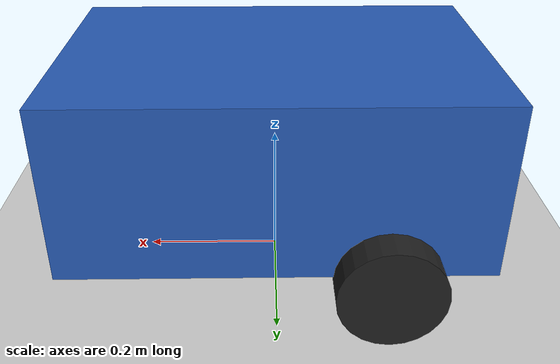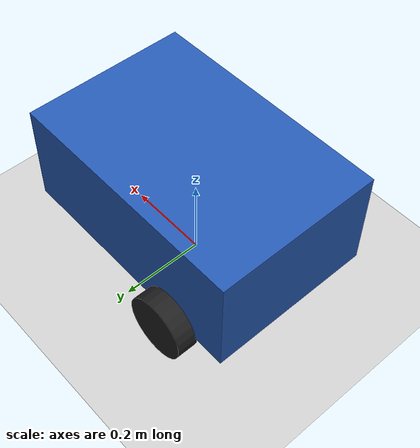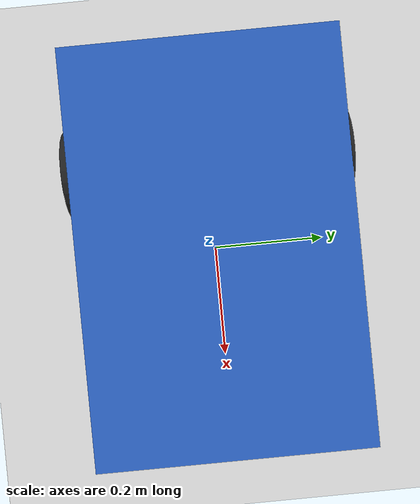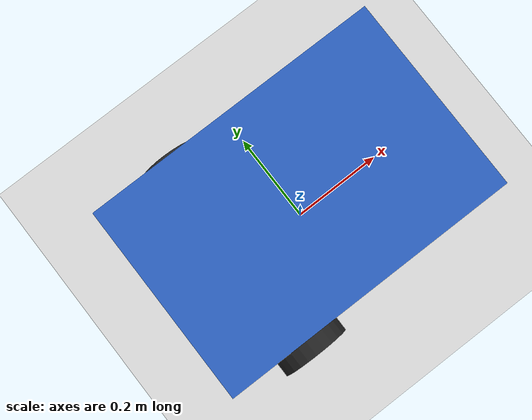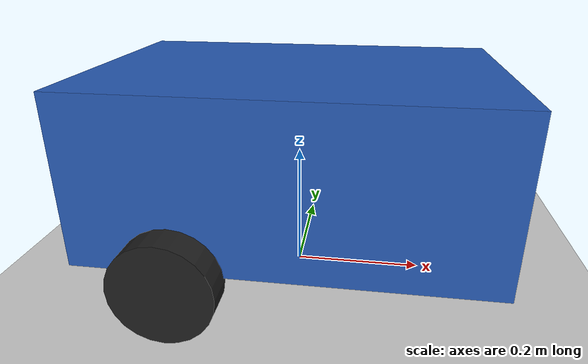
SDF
<?xml version="1.0"?>
<sdf version="1.10">
  <world name="physical_ai_world">
    <physics name="1ms" type="ignored">
      <max_step_size>0.001</max_step_size>
      <real_time_factor>1.0</real_time_factor>
    </physics>

    <plugin filename="gz-sim-physics-system" name="gz::sim::systems::Physics"/>
    <plugin filename="gz-sim-user-commands-system" name="gz::sim::systems::UserCommands"/>
    <plugin filename="gz-sim-scene-broadcaster-system" name="gz::sim::systems::SceneBroadcaster"/>
    <plugin filename="gz-sim-contact-system" name="gz::sim::systems::Contact"/>

    <light type="directional" name="sun">
      <cast_shadows>true</cast_shadows>
      <pose>0 0 10 0 0 0</pose>
      <diffuse>0.8 0.8 0.8 1</diffuse>
      <specular>0.2 0.2 0.2 1</specular>
      <attenuation>
        <range>1000</range>
        <constant>0.9</constant>
        <linear>0.01</linear>
        <quadratic>0.001</quadratic>
      </attenuation>
      <direction>-0.5 0.1 -0.9</direction>
    </light>

    <model name="ground_plane">
      <static>true</static>
      <link name="link">
        <collision name="collision">
          <geometry>
            <plane>
              <normal>0 0 1</normal>
              <size>100 100</size>
            </plane>
          </geometry>
        </collision>
        <visual name="visual">
          <geometry>
            <plane>
              <normal>0 0 1</normal>
              <size>100 100</size>
            </plane>
          </geometry>
          <material>
            <ambient>0.8 0.8 0.8 1</ambient>
            <diffuse>0.8 0.8 0.8 1</diffuse>
            <specular>0.8 0.8 0.8 1</specular>
          </material>
        </visual>
      </link>
    </model>

    <include>
      <uri>model://physical_ai_amr</uri>
      <name>physical_ai_amr</name>
      <pose>0 0 0.08 0 0 0</pose>
    </include>
  </world>
</sdf>

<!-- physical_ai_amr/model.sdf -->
<sdf version="1.10">
  <model name="physical_ai_amr">
    <self_collide>false</self_collide>

    <link name="base_link">
      <inertial>
        <pose>0 0 0.13 0 0 0</pose>
        <mass>8.0</mass>
        <inertia>
          <ixx>0.148333</ixx>
          <ixy>0</ixy>
          <ixz>0</ixz>
          <iyy>0.281667</iyy>
          <iyz>0</iyz>
          <izz>0.346667</izz>
        </inertia>
      </inertial>
      <visual name="chassis_visual">
        <pose>0 0 0.13 0 0 0</pose>
        <geometry>
          <box>
            <size>0.6 0.4 0.25</size>
          </box>
        </geometry>
        <material>
          <ambient>0.15 0.35 0.7 1</ambient>
          <diffuse>0.15 0.35 0.7 1</diffuse>
          <specular>0.2 0.2 0.2 1</specular>
        </material>
      </visual>
      <collision name="chassis_collision">
        <pose>0 0 0.13 0 0 0</pose>
        <geometry>
          <box>
            <size>0.6 0.4 0.25</size>
          </box>
        </geometry>
      </collision>
    </link>

    <link name="left_wheel">
      <pose>-0.15 0.22 0 0 0 0</pose>
      <inertial>
        <mass>0.5</mass>
        <inertia>
          <ixx>0.000807</ixx>
          <ixy>0</ixy>
          <ixz>0</ixz>
          <iyy>0.001406</iyy>
          <iyz>0</iyz>
          <izz>0.000807</izz>
        </inertia>
      </inertial>
      <visual name="left_wheel_visual">
        <pose>0 0 0 1.5708 0 0</pose>
        <geometry>
          <cylinder>
            <radius>0.075</radius>
            <length>0.05</length>
          </cylinder>
        </geometry>
        <material>
          <ambient>0.12 0.12 0.12 1</ambient>
          <diffuse>0.12 0.12 0.12 1</diffuse>
        </material>
      </visual>
      <collision name="left_wheel_collision">
        <pose>0 0 0 1.5708 0 0</pose>
        <geometry>
          <cylinder>
            <radius>0.075</radius>
            <length>0.05</length>
          </cylinder>
        </geometry>
        <surface>
          <friction>
            <ode>
              <mu>1.0</mu>
              <mu2>1.0</mu2>
            </ode>
          </friction>
        </surface>
      </collision>
    </link>

    <joint name="left_wheel_joint" type="revolute">
      <parent>base_link</parent>
      <child>left_wheel</child>
      <axis>
        <xyz>0 1 0</xyz>
        <limit>
          <lower>-1.79769e+308</lower>
          <upper>1.79769e+308</upper>
        </limit>
      </axis>
    </joint>

    <link name="right_wheel">
      <pose>-0.15 -0.22 0 0 0 0</pose>
      <inertial>
        <mass>0.5</mass>
        <inertia>
          <ixx>0.000807</ixx>
          <ixy>0</ixy>
          <ixz>0</ixz>
          <iyy>0.001406</iyy>
          <iyz>0</iyz>
          <izz>0.000807</izz>
        </inertia>
      </inertial>
      <visual name="right_wheel_visual">
        <pose>0 0 0 1.5708 0 0</pose>
        <geometry>
          <cylinder>
            <radius>0.075</radius>
            <length>0.05</length>
          </cylinder>
        </geometry>
        <material>
          <ambient>0.12 0.12 0.12 1</ambient>
          <diffuse>0.12 0.12 0.12 1</diffuse>
        </material>
      </visual>
      <collision name="right_wheel_collision">
        <pose>0 0 0 1.5708 0 0</pose>
        <geometry>
          <cylinder>
            <radius>0.075</radius>
            <length>0.05</length>
          </cylinder>
        </geometry>
        <surface>
          <friction>
            <ode>
              <mu>1.0</mu>
              <mu2>1.0</mu2>
            </ode>
          </friction>
        </surface>
      </collision>
    </link>

    <joint name="right_wheel_joint" type="revolute">
      <parent>base_link</parent>
      <child>right_wheel</child>
      <axis>
        <xyz>0 1 0</xyz>
        <limit>
          <lower>-1.79769e+308</lower>
          <upper>1.79769e+308</upper>
        </limit>
      </axis>
    </joint>

    <link name="caster">
      <pose>0.22 0 -0.035 0 0 0</pose>
      <inertial>
        <mass>0.2</mass>
        <inertia>
          <ixx>0.000128</ixx>
          <ixy>0</ixy>
          <ixz>0</ixz>
          <iyy>0.000128</iyy>
          <iyz>0</iyz>
          <izz>0.000128</izz>
        </inertia>
      </inertial>
      <visual name="caster_visual">
        <geometry>
          <sphere>
            <radius>0.04</radius>
          </sphere>
        </geometry>
        <material>
          <ambient>0.4 0.4 0.4 1</ambient>
          <diffuse>0.4 0.4 0.4 1</diffuse>
        </material>
      </visual>
      <collision name="caster_collision">
        <geometry>
          <sphere>
            <radius>0.04</radius>
          </sphere>
        </geometry>
        <surface>
          <friction>
            <ode>
              <mu>0.01</mu>
              <mu2>0.01</mu2>
            </ode>
          </friction>
        </surface>
      </collision>
    </link>

    <joint name="caster_joint" type="fixed">
      <parent>base_link</parent>
      <child>caster</child>
    </joint>

    <plugin filename="gz-sim-diff-drive-system" name="gz::sim::systems::DiffDrive">
      <left_joint>left_wheel_joint</left_joint>
      <right_joint>right_wheel_joint</right_joint>
      <wheel_separation>0.44</wheel_separation>
      <wheel_radius>0.075</wheel_radius>
      <odom_publish_frequency>50</odom_publish_frequency>
      <topic>/cmd_vel</topic>
      <odom_topic>/odom</odom_topic>
      <tf_topic>/tf</tf_topic>
      <frame_id>odom</frame_id>
      <child_frame_id>base_link</child_frame_id>
    </plugin>
  </model>
</sdf>
